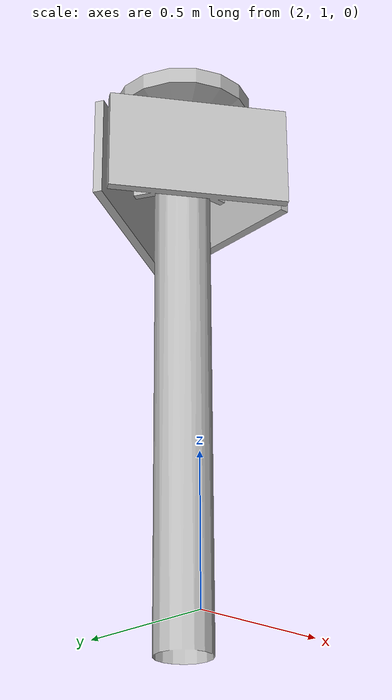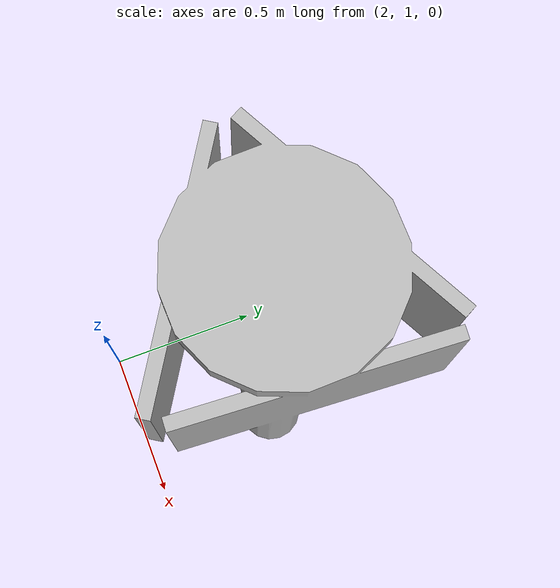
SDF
<?xml version="1.0"?>
<sdf version="1.5">
  <model name="Banner">
    <static>true</static>
    <link name="main">
      <visual name="visual">
        <pose>0 0 0 0 0 0</pose>
		<geometry>
			<mesh>
				<uri>model://world/Banner/Banner.dae</uri>
			</mesh>
		</geometry>
      </visual>
    </link>
  </model>
</sdf>
